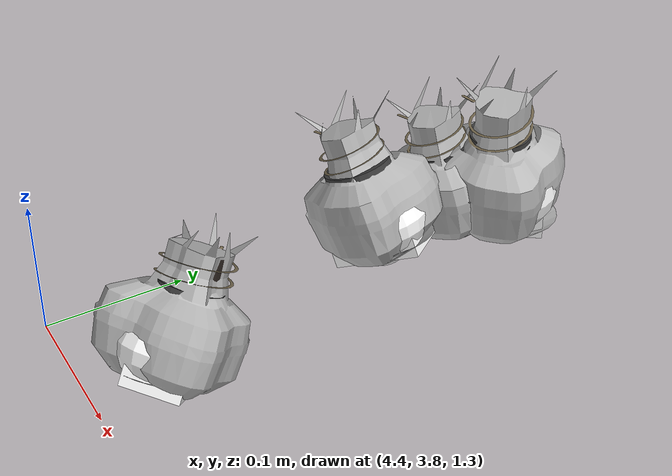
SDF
<sdf version="1.11">
 <world name="peach_orchard">
  <model name="ground">
   <static>true</static>
   <link name="link">
    <visual name="soil">
     <geometry><plane><normal>0 0 1</normal><size>32 22</size></plane></geometry>
     <material>
      <ambient>1 1 1 1</ambient>
      <diffuse>1 1 1 1</diffuse>
      <specular>0.1 0.1 0.1 1</specular>
      <pbr>
       <metal>
        <albedo_map>textures/soil_albedo.png</albedo_map>
        <normal_map type="tangent">textures/soil_normal.png</normal_map>
        <roughness>0.95</roughness>
        <metalness>0</metalness>
       </metal>
      </pbr>
     </material>
    </visual>
    <collision name="c_soil">
     <geometry><plane><normal>0 0 1</normal><size>32 22</size></plane></geometry>
    </collision>
   </link>
  </model>
  <model name="peach_tree_r3_t5_00">
   <pose>4.55 3.97492 1.40427 0 0.430106 -2.77086</pose>
   <static>true</static>
   <link name="bag">
    <visual name="bag_mesh">
     <pose>0 0 0.0408188 0 0 -0</pose>
     <geometry>
      <mesh><uri>model://peach_sim/meshes/bagged_peach.glb</uri><scale>0.930778 1.08084 0.927699</scale></mesh>
     </geometry>
    </visual>
    <visual name="body">
     <pose>0 0 0.0228188 0 0 0</pose>
     <geometry><ellipsoid><radii>0.0349042 0.0281018 0.0246443</radii></ellipsoid></geometry>
     <material>
      <ambient>1 1 1 1</ambient>
      <diffuse>1 1 1 1</diffuse>
      <specular>0.1 0.1 0.1 1</specular>
      <pbr>
       <metal>
        <albedo_map>textures/paper_bag_albedo.png</albedo_map>
        <normal_map type="tangent">textures/paper_bag_normal.png</normal_map>
        <roughness>0.72</roughness>
        <metalness>0</metalness>
       </metal>
      </pbr>
     </material>
    </visual>
    <visual name="bottom_fold">
     <pose>0 0 0.012 0 0 0.35</pose>
     <geometry><box><size>0.0541015 0.0323171 0.022</size></box></geometry>
     <material>
      <ambient>1 1 1 1</ambient>
      <diffuse>1 1 1 1</diffuse>
      <specular>0.1 0.1 0.1 1</specular>
      <pbr>
       <metal>
        <albedo_map>textures/paper_bag_albedo.png</albedo_map>
        <normal_map type="tangent">textures/paper_bag_normal.png</normal_map>
        <roughness>0.8</roughness>
        <metalness>0</metalness>
       </metal>
      </pbr>
     </material>
    </visual>
    <visual name="fruit">
     <pose>0 0 0.0172823 0 0 0</pose>
     <geometry><sphere><radius>0.0242136</radius></sphere></geometry>
     <material>
      <ambient>1 1 1 1</ambient>
      <diffuse>1 1 1 1</diffuse>
      <specular>0.1 0.1 0.1 1</specular>
      <pbr>
       <metal>
        <albedo_map>textures/fruit_skin_albedo.png</albedo_map>
        <normal_map type="tangent">textures/fruit_skin_normal.png</normal_map>
        <roughness>0.55</roughness>
        <metalness>0</metalness>
       </metal>
      </pbr>
     </material>
    </visual>
    <visual name="neck">
     <pose>0 0 0.0546375 0 0 0</pose>
     <geometry><cylinder><radius>0.013</radius><length>0.018</length></cylinder></geometry>
     <material>
      <ambient>1 1 1 1</ambient>
      <diffuse>1 1 1 1</diffuse>
      <specular>0.1 0.1 0.1 1</specular>
      <pbr>
       <metal>
        <albedo_map>textures/paper_bag_albedo.png</albedo_map>
        <normal_map type="tangent">textures/paper_bag_normal.png</normal_map>
        <roughness>0.75</roughness>
        <metalness>0</metalness>
       </metal>
      </pbr>
     </material>
    </visual>
    <visual name="gather">
     <pose>0 0 0.0356375 0 0 0</pose>
     <geometry><cylinder><radius>0.019</radius><length>0.02</length></cylinder></geometry>
     <material>
      <ambient>1 1 1 1</ambient>
      <diffuse>1 1 1 1</diffuse>
      <specular>0.1 0.1 0.1 1</specular>
      <pbr>
       <metal>
        <albedo_map>textures/paper_bag_albedo.png</albedo_map>
        <normal_map type="tangent">textures/paper_bag_normal.png</normal_map>
        <roughness>0.8</roughness>
        <metalness>0</metalness>
       </metal>
      </pbr>
     </material>
    </visual>
    <visual name="inner_paper">
     <pose>0 0 0.0596375 0 0 0</pose>
     <geometry><cylinder><radius>0.01</radius><length>0.008</length></cylinder></geometry>
     <material>
      <ambient>0.180392 0.14902 0.133333 1</ambient>
      <diffuse>0.180392 0.14902 0.133333 1</diffuse>
      <specular>0.1 0.1 0.1 1</specular>
     </material>
    </visual>
    <visual name="wire_0">
     <pose>0 0 0.0496375 0 0 0</pose>
     <geometry><cylinder><radius>0.0205</radius><length>0.0035</length></cylinder></geometry>
     <material>
      <ambient>0.25 0.25 0.25 1</ambient>
      <diffuse>0.25 0.25 0.25 1</diffuse>
      <specular>0.1 0.1 0.1 1</specular>
     </material>
    </visual>
    <visual name="wire_1">
     <pose>0 0 0.0566375 0 0 0</pose>
     <geometry><cylinder><radius>0.0205</radius><length>0.0035</length></cylinder></geometry>
     <material>
      <ambient>0.25 0.25 0.25 1</ambient>
      <diffuse>0.25 0.25 0.25 1</diffuse>
      <specular>0.1 0.1 0.1 1</specular>
     </material>
    </visual>
    <visual name="wire_tail">
     <pose>0.01 0 0.0576375 0 0.521618 0</pose>
     <geometry><cylinder><radius>0.0012</radius><length>0.026</length></cylinder></geometry>
     <material>
      <ambient>0.25 0.25 0.25 1</ambient>
      <diffuse>0.25 0.25 0.25 1</diffuse>
      <specular>0.1 0.1 0.1 1</specular>
     </material>
    </visual>
    <collision name="c_body">
     <pose>0 0 0.0228188 0 0 0</pose>
     <geometry><cylinder><radius>0.0349042</radius><length>0.0456375</length></cylinder></geometry>
    </collision>
   </link>
  </model>
  <model name="peach_tree_r3_t5_01">
   <pose>4.55 3.8236 1.36257 0 0.593391 2.08438</pose>
   <static>true</static>
   <link name="bag">
    <visual name="bag_mesh">
     <pose>0 0 0.0424161 0 0 0</pose>
     <geometry>
      <mesh><uri>model://peach_sim/meshes/bagged_peach.glb</uri><scale>1.09019 1.23798 0.964002</scale></mesh>
     </geometry>
    </visual>
    <visual name="body">
     <pose>0 0 0.0244161 0 0 0</pose>
     <geometry><ellipsoid><radii>0.040882 0.0321876 0.0263694</radii></ellipsoid></geometry>
     <material>
      <ambient>1 1 1 1</ambient>
      <diffuse>1 1 1 1</diffuse>
      <specular>0.1 0.1 0.1 1</specular>
      <pbr>
       <metal>
        <albedo_map>textures/paper_bag_albedo.png</albedo_map>
        <normal_map type="tangent">textures/paper_bag_normal.png</normal_map>
        <roughness>0.72</roughness>
        <metalness>0</metalness>
       </metal>
      </pbr>
     </material>
    </visual>
    <visual name="bottom_fold">
     <pose>0 0 0.012 0 0 0.35</pose>
     <geometry><box><size>0.0633671 0.0370157 0.022</size></box></geometry>
     <material>
      <ambient>1 1 1 1</ambient>
      <diffuse>1 1 1 1</diffuse>
      <specular>0.1 0.1 0.1 1</specular>
      <pbr>
       <metal>
        <albedo_map>textures/paper_bag_albedo.png</albedo_map>
        <normal_map type="tangent">textures/paper_bag_normal.png</normal_map>
        <roughness>0.8</roughness>
        <metalness>0</metalness>
       </metal>
      </pbr>
     </material>
    </visual>
    <visual name="fruit">
     <pose>0 0 0.0196813 0 0 0</pose>
     <geometry><sphere><radius>0.0267086</radius></sphere></geometry>
     <material>
      <ambient>1 1 1 1</ambient>
      <diffuse>1 1 1 1</diffuse>
      <specular>0.1 0.1 0.1 1</specular>
      <pbr>
       <metal>
        <albedo_map>textures/fruit_skin_albedo.png</albedo_map>
        <normal_map type="tangent">textures/fruit_skin_normal.png</normal_map>
        <roughness>0.55</roughness>
        <metalness>0</metalness>
       </metal>
      </pbr>
     </material>
    </visual>
    <visual name="neck">
     <pose>0 0 0.0578322 0 0 0</pose>
     <geometry><cylinder><radius>0.013</radius><length>0.018</length></cylinder></geometry>
     <material>
      <ambient>1 1 1 1</ambient>
      <diffuse>1 1 1 1</diffuse>
      <specular>0.1 0.1 0.1 1</specular>
      <pbr>
       <metal>
        <albedo_map>textures/paper_bag_albedo.png</albedo_map>
        <normal_map type="tangent">textures/paper_bag_normal.png</normal_map>
        <roughness>0.75</roughness>
        <metalness>0</metalness>
       </metal>
      </pbr>
     </material>
    </visual>
    <visual name="gather">
     <pose>0 0 0.0388322 0 0 0</pose>
     <geometry><cylinder><radius>0.019</radius><length>0.02</length></cylinder></geometry>
     <material>
      <ambient>1 1 1 1</ambient>
      <diffuse>1 1 1 1</diffuse>
      <specular>0.1 0.1 0.1 1</specular>
      <pbr>
       <metal>
        <albedo_map>textures/paper_bag_albedo.png</albedo_map>
        <normal_map type="tangent">textures/paper_bag_normal.png</normal_map>
        <roughness>0.8</roughness>
        <metalness>0</metalness>
       </metal>
      </pbr>
     </material>
    </visual>
    <visual name="inner_paper">
     <pose>0 0 0.0628322 0 0 0</pose>
     <geometry><cylinder><radius>0.01</radius><length>0.008</length></cylinder></geometry>
     <material>
      <ambient>0.180392 0.14902 0.133333 1</ambient>
      <diffuse>0.180392 0.14902 0.133333 1</diffuse>
      <specular>0.1 0.1 0.1 1</specular>
     </material>
    </visual>
    <visual name="wire_0">
     <pose>0 0 0.0528322 0 0 0</pose>
     <geometry><cylinder><radius>0.0205</radius><length>0.0035</length></cylinder></geometry>
     <material>
      <ambient>0.25 0.25 0.25 1</ambient>
      <diffuse>0.25 0.25 0.25 1</diffuse>
      <specular>0.1 0.1 0.1 1</specular>
     </material>
    </visual>
    <visual name="wire_1">
     <pose>0 0 0.0598322 0 0 0</pose>
     <geometry><cylinder><radius>0.0205</radius><length>0.0035</length></cylinder></geometry>
     <material>
      <ambient>0.25 0.25 0.25 1</ambient>
      <diffuse>0.25 0.25 0.25 1</diffuse>
      <specular>0.1 0.1 0.1 1</specular>
     </material>
    </visual>
    <visual name="wire_tail">
     <pose>0.01 0 0.0608322 0 0.521618 0</pose>
     <geometry><cylinder><radius>0.0012</radius><length>0.026</length></cylinder></geometry>
     <material>
      <ambient>0.25 0.25 0.25 1</ambient>
      <diffuse>0.25 0.25 0.25 1</diffuse>
      <specular>0.1 0.1 0.1 1</specular>
     </material>
    </visual>
    <collision name="c_body">
     <pose>0 0 0.0244161 0 0 0</pose>
     <geometry><cylinder><radius>0.040882</radius><length>0.0488322</length></cylinder></geometry>
    </collision>
   </link>
  </model>
  <model name="peach_tree_r3_t5_04">
   <pose>4.47923 4.0716 1.34165 0 0.253364 -2.64662</pose>
   <static>true</static>
   <link name="bag">
    <visual name="bag_mesh">
     <pose>0 0 0.0416167 0 0 -0</pose>
     <geometry>
      <mesh><uri>model://peach_sim/meshes/bagged_peach.glb</uri><scale>1.0152 1.14349 0.945834</scale></mesh>
     </geometry>
    </visual>
    <visual name="body">
     <pose>0 0 0.0236167 0 0 0</pose>
     <geometry><ellipsoid><radii>0.03807 0.0297308 0.025506</radii></ellipsoid></geometry>
     <material>
      <ambient>1 1 1 1</ambient>
      <diffuse>1 1 1 1</diffuse>
      <specular>0.1 0.1 0.1 1</specular>
      <pbr>
       <metal>
        <albedo_map>textures/paper_bag_albedo.png</albedo_map>
        <normal_map type="tangent">textures/paper_bag_normal.png</normal_map>
        <roughness>0.72</roughness>
        <metalness>0</metalness>
       </metal>
      </pbr>
     </material>
    </visual>
    <visual name="bottom_fold">
     <pose>0 0 0.012 0 0 0.35</pose>
     <geometry><box><size>0.0590085 0.0341904 0.022</size></box></geometry>
     <material>
      <ambient>1 1 1 1</ambient>
      <diffuse>1 1 1 1</diffuse>
      <specular>0.1 0.1 0.1 1</specular>
      <pbr>
       <metal>
        <albedo_map>textures/paper_bag_albedo.png</albedo_map>
        <normal_map type="tangent">textures/paper_bag_normal.png</normal_map>
        <roughness>0.8</roughness>
        <metalness>0</metalness>
       </metal>
      </pbr>
     </material>
    </visual>
    <visual name="fruit">
     <pose>0 0 0.0208866 0 0 0</pose>
     <geometry><sphere><radius>0.0279621</radius></sphere></geometry>
     <material>
      <ambient>1 1 1 1</ambient>
      <diffuse>1 1 1 1</diffuse>
      <specular>0.1 0.1 0.1 1</specular>
      <pbr>
       <metal>
        <albedo_map>textures/fruit_skin_albedo.png</albedo_map>
        <normal_map type="tangent">textures/fruit_skin_normal.png</normal_map>
        <roughness>0.55</roughness>
        <metalness>0</metalness>
       </metal>
      </pbr>
     </material>
    </visual>
    <visual name="neck">
     <pose>0 0 0.0562334 0 0 0</pose>
     <geometry><cylinder><radius>0.013</radius><length>0.018</length></cylinder></geometry>
     <material>
      <ambient>1 1 1 1</ambient>
      <diffuse>1 1 1 1</diffuse>
      <specular>0.1 0.1 0.1 1</specular>
      <pbr>
       <metal>
        <albedo_map>textures/paper_bag_albedo.png</albedo_map>
        <normal_map type="tangent">textures/paper_bag_normal.png</normal_map>
        <roughness>0.75</roughness>
        <metalness>0</metalness>
       </metal>
      </pbr>
     </material>
    </visual>
    <visual name="gather">
     <pose>0 0 0.0372334 0 0 0</pose>
     <geometry><cylinder><radius>0.019</radius><length>0.02</length></cylinder></geometry>
     <material>
      <ambient>1 1 1 1</ambient>
      <diffuse>1 1 1 1</diffuse>
      <specular>0.1 0.1 0.1 1</specular>
      <pbr>
       <metal>
        <albedo_map>textures/paper_bag_albedo.png</albedo_map>
        <normal_map type="tangent">textures/paper_bag_normal.png</normal_map>
        <roughness>0.8</roughness>
        <metalness>0</metalness>
       </metal>
      </pbr>
     </material>
    </visual>
    <visual name="inner_paper">
     <pose>0 0 0.0612334 0 0 0</pose>
     <geometry><cylinder><radius>0.01</radius><length>0.008</length></cylinder></geometry>
     <material>
      <ambient>0.180392 0.14902 0.133333 1</ambient>
      <diffuse>0.180392 0.14902 0.133333 1</diffuse>
      <specular>0.1 0.1 0.1 1</specular>
     </material>
    </visual>
    <visual name="wire_0">
     <pose>0 0 0.0512334 0 0 0</pose>
     <geometry><cylinder><radius>0.0205</radius><length>0.0035</length></cylinder></geometry>
     <material>
      <ambient>0.25 0.25 0.25 1</ambient>
      <diffuse>0.25 0.25 0.25 1</diffuse>
      <specular>0.1 0.1 0.1 1</specular>
     </material>
    </visual>
    <visual name="wire_1">
     <pose>0 0 0.0582334 0 0 0</pose>
     <geometry><cylinder><radius>0.0205</radius><length>0.0035</length></cylinder></geometry>
     <material>
      <ambient>0.25 0.25 0.25 1</ambient>
      <diffuse>0.25 0.25 0.25 1</diffuse>
      <specular>0.1 0.1 0.1 1</specular>
     </material>
    </visual>
    <visual name="wire_tail">
     <pose>0.01 0 0.0592334 0 0.521618 0</pose>
     <geometry><cylinder><radius>0.0012</radius><length>0.026</length></cylinder></geometry>
     <material>
      <ambient>0.25 0.25 0.25 1</ambient>
      <diffuse>0.25 0.25 0.25 1</diffuse>
      <specular>0.1 0.1 0.1 1</specular>
     </material>
    </visual>
    <collision name="c_body">
     <pose>0 0 0.0236167 0 0 0</pose>
     <geometry><cylinder><radius>0.03807</radius><length>0.0472334</length></cylinder></geometry>
    </collision>
   </link>
  </model>
  <model name="peach_tree_r3_t5_05">
   <pose>4.49374 4.09816 1.34381 0 0.0407327 -2.54503</pose>
   <static>true</static>
   <link name="bag">
    <visual name="bag_mesh">
     <pose>0 0 0.0478535 0 0 -0</pose>
     <geometry>
      <mesh><uri>model://peach_sim/meshes/bagged_peach.glb</uri><scale>1.06118 1.29796 1.08758</scale></mesh>
     </geometry>
    </visual>
    <visual name="body">
     <pose>0 0 0.0298535 0 0 0</pose>
     <geometry><ellipsoid><radii>0.0397944 0.0337469 0.0322418</radii></ellipsoid></geometry>
     <material>
      <ambient>1 1 1 1</ambient>
      <diffuse>1 1 1 1</diffuse>
      <specular>0.1 0.1 0.1 1</specular>
      <pbr>
       <metal>
        <albedo_map>textures/paper_bag_albedo.png</albedo_map>
        <normal_map type="tangent">textures/paper_bag_normal.png</normal_map>
        <roughness>0.72</roughness>
        <metalness>0</metalness>
       </metal>
      </pbr>
     </material>
    </visual>
    <visual name="bottom_fold">
     <pose>0 0 0.012 0 0 0.35</pose>
     <geometry><box><size>0.0616814 0.0388089 0.022</size></box></geometry>
     <material>
      <ambient>1 1 1 1</ambient>
      <diffuse>1 1 1 1</diffuse>
      <specular>0.1 0.1 0.1 1</specular>
      <pbr>
       <metal>
        <albedo_map>textures/paper_bag_albedo.png</albedo_map>
        <normal_map type="tangent">textures/paper_bag_normal.png</normal_map>
        <roughness>0.8</roughness>
        <metalness>0</metalness>
       </metal>
      </pbr>
     </material>
    </visual>
    <visual name="fruit">
     <pose>0 0 0.0215905 0 0 0</pose>
     <geometry><sphere><radius>0.0286941</radius></sphere></geometry>
     <material>
      <ambient>1 1 1 1</ambient>
      <diffuse>1 1 1 1</diffuse>
      <specular>0.1 0.1 0.1 1</specular>
      <pbr>
       <metal>
        <albedo_map>textures/fruit_skin_albedo.png</albedo_map>
        <normal_map type="tangent">textures/fruit_skin_normal.png</normal_map>
        <roughness>0.55</roughness>
        <metalness>0</metalness>
       </metal>
      </pbr>
     </material>
    </visual>
    <visual name="neck">
     <pose>0 0 0.0687071 0 0 0</pose>
     <geometry><cylinder><radius>0.013</radius><length>0.018</length></cylinder></geometry>
     <material>
      <ambient>1 1 1 1</ambient>
      <diffuse>1 1 1 1</diffuse>
      <specular>0.1 0.1 0.1 1</specular>
      <pbr>
       <metal>
        <albedo_map>textures/paper_bag_albedo.png</albedo_map>
        <normal_map type="tangent">textures/paper_bag_normal.png</normal_map>
        <roughness>0.75</roughness>
        <metalness>0</metalness>
       </metal>
      </pbr>
     </material>
    </visual>
    <visual name="gather">
     <pose>0 0 0.0497071 0 0 0</pose>
     <geometry><cylinder><radius>0.019</radius><length>0.02</length></cylinder></geometry>
     <material>
      <ambient>1 1 1 1</ambient>
      <diffuse>1 1 1 1</diffuse>
      <specular>0.1 0.1 0.1 1</specular>
      <pbr>
       <metal>
        <albedo_map>textures/paper_bag_albedo.png</albedo_map>
        <normal_map type="tangent">textures/paper_bag_normal.png</normal_map>
        <roughness>0.8</roughness>
        <metalness>0</metalness>
       </metal>
      </pbr>
     </material>
    </visual>
    <visual name="inner_paper">
     <pose>0 0 0.0737071 0 0 0</pose>
     <geometry><cylinder><radius>0.01</radius><length>0.008</length></cylinder></geometry>
     <material>
      <ambient>0.180392 0.14902 0.133333 1</ambient>
      <diffuse>0.180392 0.14902 0.133333 1</diffuse>
      <specular>0.1 0.1 0.1 1</specular>
     </material>
    </visual>
    <visual name="wire_0">
     <pose>0 0 0.0637071 0 0 0</pose>
     <geometry><cylinder><radius>0.0205</radius><length>0.0035</length></cylinder></geometry>
     <material>
      <ambient>0.25 0.25 0.25 1</ambient>
      <diffuse>0.25 0.25 0.25 1</diffuse>
      <specular>0.1 0.1 0.1 1</specular>
     </material>
    </visual>
    <visual name="wire_1">
     <pose>0 0 0.0707071 0 0 0</pose>
     <geometry><cylinder><radius>0.0205</radius><length>0.0035</length></cylinder></geometry>
     <material>
      <ambient>0.25 0.25 0.25 1</ambient>
      <diffuse>0.25 0.25 0.25 1</diffuse>
      <specular>0.1 0.1 0.1 1</specular>
     </material>
    </visual>
    <visual name="wire_tail">
     <pose>0.01 0 0.0717071 0 0.521618 0</pose>
     <geometry><cylinder><radius>0.0012</radius><length>0.026</length></cylinder></geometry>
     <material>
      <ambient>0.25 0.25 0.25 1</ambient>
      <diffuse>0.25 0.25 0.25 1</diffuse>
      <specular>0.1 0.1 0.1 1</specular>
     </material>
    </visual>
    <collision name="c_body">
     <pose>0 0 0.0298535 0 0 0</pose>
     <geometry><cylinder><radius>0.0397944</radius><length>0.0597071</length></cylinder></geometry>
    </collision>
   </link>
  </model>
 </world>
</sdf>
